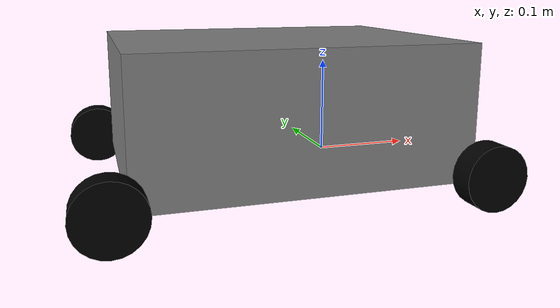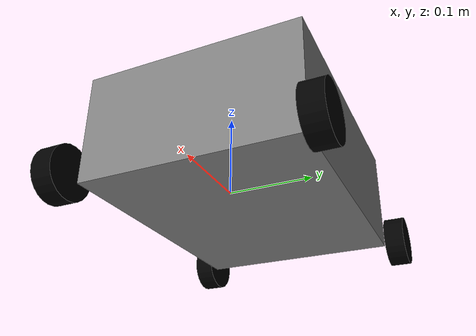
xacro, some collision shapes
<?xml version="1.0"?>
<robot xmlns:xacro="http://www.ros.org/wiki/xacro"  name="robot">

    <xacro:include filename="inertial_macros.xacro"/>

      <!-- Chassis parameters -->
      <xacro:property name="chassis_length" value="0.335"/>
      <xacro:property name="chassis_width" value="0.265"/>
      <xacro:property name="chassis_height" value="0.138"/>
      <xacro:property name="chassis_mass" value="1.0"/>

      <!-- Wheel parameters -->

      <xacro:property name="wheel_radius" value="0.033"/>
      <xacro:property name="wheel_thickness" value="0.026"/>
      <xacro:property name="wheel_mass" value="0.05"/>

      <xacro:property name="wheel_offset_x" value="0.226"/>
      <xacro:property name="wheel_offset_y" value="0.1485"/>
      <xacro:property name="wheel_offset_z" value="0.01"/>

      <xacro:property name="PI" value="3.1415926535897931" />
      <!-- Simple Macro to calculate inertia -->

      <!--COLOR_RVIZ-->
    <material name="white">
        <color rgba="1 1 1 1" />
    </material>

    <material name="orange">
        <color rgba="1 0.3 0.1 1"/>
    </material>

    <material name="blue">
        <color rgba="0.2 0.2 1 1"/>
    </material>

    <material name="black">
        <color rgba="0 0 0 1"/>
    </material>

    <material name="red">
        <color rgba="1 0 0 1"/>
    </material>

    <material name="gray">
        <color rgba="0.5 0.5 0.5 1"/>
    </material>

     <!-- BASE LINK -->

     <link name="base_link">

     </link>

     <!-- BASE_FOOTPRINT LINK -->

     <joint name="base_footprint_joint" type="fixed">
         <parent link="base_link"/>
         <child link="base_footprint"/>
         <origin xyz="0 0 0" rpy="0 0 0"/>
     </joint>

     <link name="base_footprint">
     </link>

     <!-- CHASSIS LINK -->

    <joint name="chassis_joint" type="fixed">
        <parent link="base_link"/>
        <child link="chassis"/>
        <origin xyz="${-wheel_offset_x} 0 ${-wheel_offset_z}"/>
    </joint>

    <link name="chassis">

        <visual>
            <origin xyz="${chassis_length/2} 0 ${chassis_height/2}" rpy="0 0 0"/>
            <geometry>
                <mesh filename="/my_src/fabby/fabby/meshes/Chassis_with_wheels_0_05_new.stl" scale="0.5 0.5 0.5"/>
            </geometry>
            <material name="gray"/>

        </visual>

        <collision>
            <origin xyz="${chassis_length/2} 0 ${chassis_height/2}"/>
            <geometry>
                <box size="${chassis_length} ${chassis_width} ${chassis_height}"/>
            </geometry>
        </collision>

        <xacro:inertial_box mass="0.5" x="0.3" y="0.3" z="0.15">
            <origin xyz="0.15 0 0.075" rpy="0 0 0"/>
        </xacro:inertial_box>

    </link>

    <gazebo reference="chassis">
        <material>Gazebo/Black</material>
    </gazebo>

     <!-- REAR LEFT WHEEL LINK -->

     <joint name="rear_left_wheel_joint" type="continuous">
        <parent link="base_link"/>
        <child link="rear_left_wheel"/>
        <origin xyz="${chassis_length/4 + wheel_radius} ${wheel_offset_y} 0" rpy="-${pi/2} 0 0" />
        <axis xyz="0 0 1"/>
    </joint>

    <link name="rear_left_wheel">
        <visual>
            <geometry>
                <cylinder radius="${wheel_radius}" length="${wheel_thickness}"/>
            </geometry>
            <material name="black"/>
        </visual>
        <collision>
            <geometry>
                 <cylinder radius="${wheel_radius}" length="${wheel_thickness}"/>
            </geometry>
        </collision>
        <xacro:inertial_cylinder mass="0.1" length="0.04" radius="0.05">
            <origin xyz="0 0 0" rpy="0 0 0"/>
        </xacro:inertial_cylinder>
    </link>

    <gazebo reference="rear_left_wheel">
        <material>Gazebo/Blue</material>
        <mu1 value="1.0"/>
		<mu2 value="1.0"/>
		<kp value="10000000.0" />
		<kd value="1.0" />
		<fdir1 value="1 0 0"/>
        <turnGravityOff>false</turnGravityOff>
    </gazebo>

    <!-- REAR RIGHT WHEEL LINK -->

    <joint name="rear_right_wheel_joint" type="continuous">
        <parent link="base_link"/>
        <child link="rear_right_wheel"/>
        <origin xyz="${chassis_length/4 + wheel_radius} ${-wheel_offset_y} 0" rpy="${pi/2} 0 0" />
        <axis xyz="0 0 -1"/>
    </joint>

    <link name="rear_right_wheel">
        <visual>
            <geometry>
                <cylinder radius="${wheel_radius}" length="${wheel_thickness}"/>
            </geometry>
            <material name="black"/>
        </visual>

        <collision>
            <geometry>
                 <cylinder radius="${wheel_radius}" length="${wheel_thickness}"/>
            </geometry>
        </collision>

        <xacro:inertial_cylinder mass="0.1" length="0.04" radius="0.05">
            <origin xyz="0 0 0" rpy="0 0 0"/>
        </xacro:inertial_cylinder>

    </link>

    <gazebo reference="rear_right_wheel">
        <material>Gazebo/Blue</material>
        <mu1 value="1.0"/>
		<mu2 value="1.0"/>
		<kp value="10000000.0" />
		<kd value="1.0" />
		<fdir1 value="1 0 0"/>
        <turnGravityOff>false</turnGravityOff>
    </gazebo>

 <!-- FRONT LEFT WHEEL LINK -->

 <joint name="front_left_wheel_joint" type="continuous">
    <parent link="base_link"/>
    <child link="front_left_wheel"/>
    <origin xyz="${-(wheel_offset_x+wheel_radius/2)} ${wheel_offset_y} 0" rpy="-${pi/2} 0 0" />
    <axis xyz="0 0 1"/>
</joint>

<link name="front_left_wheel">
    <visual>
        <geometry>
            <cylinder radius="${wheel_radius}" length="${wheel_thickness}"/>
        </geometry>
        <material name="black"/>
    </visual>

    <collision>
        <geometry>
             <cylinder radius="${wheel_radius}" length="${wheel_thickness}"/>
        </geometry>
    </collision>

    <xacro:inertial_cylinder mass="0.1" length="0.04" radius="0.05">
            <origin xyz="0 0 0" rpy="0 0 0"/>
        </xacro:inertial_cylinder>

</link>

<gazebo reference="front_left_wheel">
    <material>Gazebo/Blue</material>
    <mu1 value="1.0"/>
		<mu2 value="1.0"/>
		<kp value="10000000.0" />
		<kd value="1.0" />
		<fdir1 value="1 0 0"/>
        <turnGravityOff>false</turnGravityOff>
</gazebo>

<!-- FRONT RIGHT WHEEL LINK -->

<joint name="front_right_wheel_joint" type="continuous">
    <parent link="base_link"/>
    <child link="front_right_wheel"/>
    <origin xyz="${-(wheel_offset_x+wheel_radius/2)} ${-wheel_offset_y} 0" rpy="${pi/2} 0 0" />
    <axis xyz="0 0 -1"/>
</joint>

<link name="front_right_wheel">
    <visual>
        <geometry>
            <cylinder radius="${wheel_radius}" length="${wheel_thickness}"/>
        </geometry>
        <material name="black"/>
    </visual>

    <collision>
        <geometry>
             <cylinder radius="${wheel_radius}" length="${wheel_thickness}"/>
        </geometry>
    </collision>

    <xacro:inertial_cylinder mass="0.1" length="0.04" radius="0.05">
        <origin xyz="0 0 0" rpy="0 0 0"/>
    </xacro:inertial_cylinder>

</link>

<gazebo reference="front_right_wheel">
    <material>Gazebo/Blue</material>
    <mu1 value="1.0"/>
		<mu2 value="1.0"/>
		<kp value="10000000.0" />
		<kd value="1.0" />
		<fdir1 value="1 0 0"/>
        <turnGravityOff>false</turnGravityOff>
</gazebo>

</robot>
